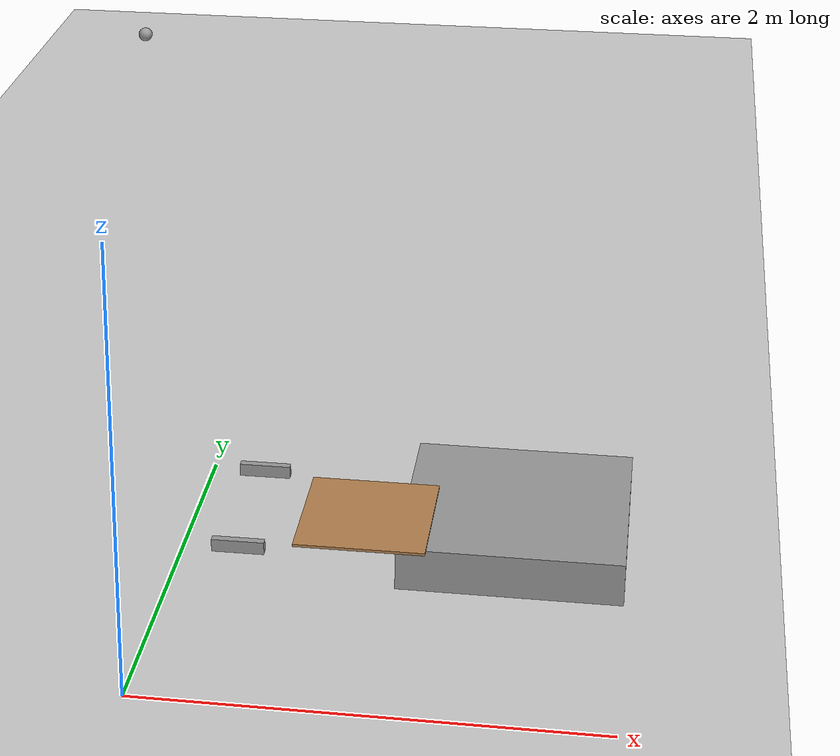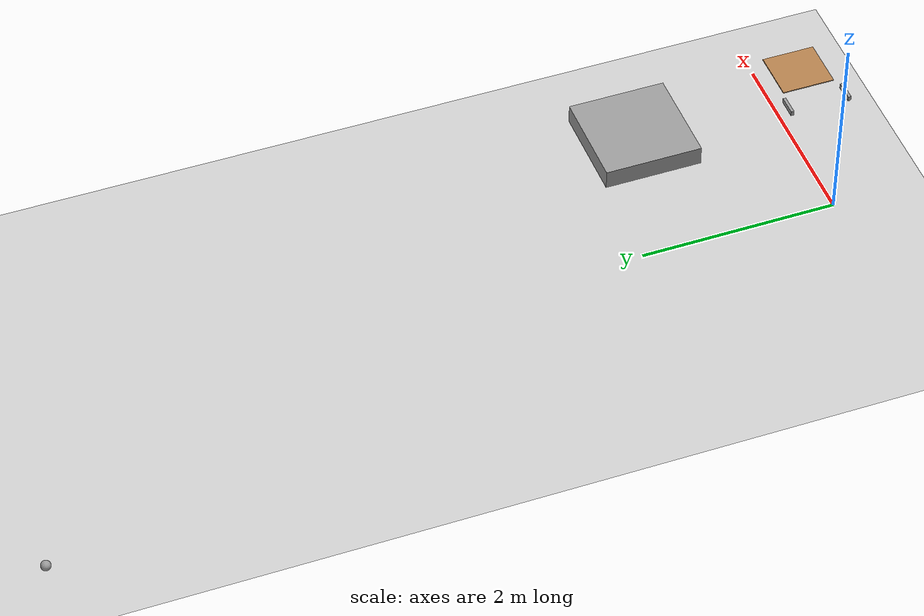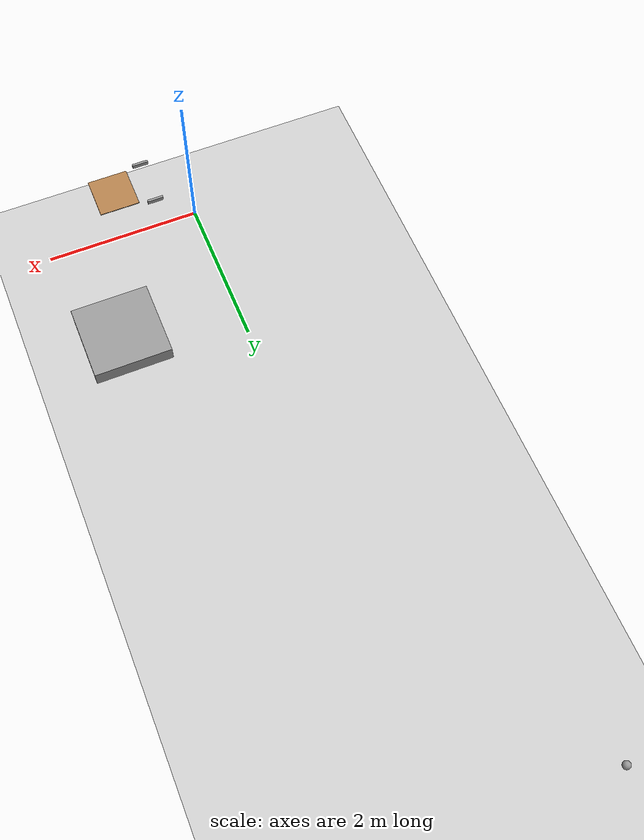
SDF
<sdf version="1.6">
 <world name="default">
  <model name="ground_plane">
   <static>1</static>
   <link name="link">
    <collision name="collision">
     <geometry><plane><normal>0 0 1</normal><size>100 100</size></plane></geometry>
     <surface>
      <contact><collide_bitmask>65535</collide_bitmask></contact>
      <friction><ode><mu>100</mu><mu2>50</mu2></ode></friction>
     </surface>
    </collision>
    <visual name="visual">
     <cast_shadows>0</cast_shadows>
     <geometry><plane><normal>0 0 1</normal><size>100 100</size></plane></geometry>
     <material>
      <script><uri>file://media/materials/scripts/gazebo.material</uri><name>Gazebo/Grey</name></script>
     </material>
    </visual>
   </link>
  </model>
  <light name="sun" type="directional">
   <pose>0 0 10 0 -0 0</pose>
   <diffuse>0.8 0.8 0.8 1</diffuse>
   <specular>0.2 0.2 0.2 1</specular>
   <attenuation>
    <range>1000</range>
    <constant>0.9</constant>
    <linear>0.01</linear>
    <quadratic>0.001</quadratic>
   </attenuation>
   <direction>-0.5 0.1 -0.9</direction>
  </light>
  <physics name="default_physics" default="0" type="ode">
   <real_time_update_rate>1000</real_time_update_rate>
   <max_step_size>0.001</max_step_size>
   <real_time_factor>1</real_time_factor>
  </physics>
  <gravity>0 0 -9.81</gravity>
  <magnetic_field>6e-06 2.3e-05 -4.2e-05</magnetic_field>
  <atmosphere type="adiabatic"/>
  <scene><ambient>0.4 0.4 0.4 1</ambient><background>0.7 0.7 0.7 1</background><shadows>1</shadows></scene>
  <spherical_coordinates>
   <surface_model>EARTH_WGS84</surface_model>
   <latitude_deg>0</latitude_deg>
   <longitude_deg>0</longitude_deg>
   <elevation>0</elevation>
   <heading_deg>0</heading_deg>
  </spherical_coordinates>
  <model name="wooden_board_handle_v2_revolute">
   <link name="base">
    <inertial>
     <mass>0.2765</mass>
     <inertia>
      <ixx>0.0025148</ixx>
      <ixy>0</ixy>
      <ixz>0</ixz>
      <iyy>0.00024037</iyy>
      <iyz>0</iyz>
      <izz>0.00275013</izz>
     </inertia>
    </inertial>
    <visual name="visual">
     <geometry><box><size>0.5016 0.5302 0.01046</size></box></geometry>
     <material>
      <script><uri>file://media/materials/scripts/gazebo.material</uri><name>Gazebo/Wood</name></script>
      <shader type="pixel"><normal_map>__default__</normal_map></shader>
      <ambient>1 1 1 1</ambient>
      <diffuse>1 1 1 1</diffuse>
      <specular>0.2 0.2 0.2 1</specular>
      <emissive>0 0 0 1</emissive>
     </material>
    </visual>
    <collision name="collision">
     <geometry><box><size>0.1016 0.3302 0.01046</size></box></geometry>
     <surface>
      <friction>
       <ode><mu>1</mu><mu2>1</mu2><fdir1>0 0 0</fdir1><slip1>0</slip1><slip2>0</slip2></ode>
       <torsional>
        <coefficient>1</coefficient>
        <patch_radius>0</patch_radius>
        <surface_radius>0.01</surface_radius>
        <use_patch_radius>0</use_patch_radius>
        <ode><slip>0</slip></ode>
       </torsional>
      </friction>
      <bounce><restitution_coefficient>0</restitution_coefficient><threshold>1e+06</threshold></bounce>
      <contact>
       <collide_without_contact>0</collide_without_contact>
       <collide_without_contact_bitmask>1</collide_without_contact_bitmask>
       <collide_bitmask>1</collide_bitmask>
       <ode>
        <soft_cfm>0</soft_cfm>
        <soft_erp>0.2</soft_erp>
        <kp>100000</kp>
        <kd>100</kd>
        <max_vel>100</max_vel>
        <min_depth>0.001</min_depth>
       </ode>
       <bullet>
        <split_impulse>1</split_impulse>
        <split_impulse_penetration_threshold>-0.01</split_impulse_penetration_threshold>
        <soft_cfm>0</soft_cfm>
        <soft_erp>0.2</soft_erp>
        <kp>100000</kp>
        <kd>100</kd>
       </bullet>
      </contact>
     </surface>
    </collision>
   </link>
   <link name="link_0">
    <pose>-0.45 0.3 0.00523 -3.14159 -0.001529 4.6e-05</pose>
    <inertial>
     <mass>0.001</mass>
     <inertia><ixx>0</ixx><ixy>0</ixy><ixz>0</ixz><iyy>0</iyy><iyz>0</iyz><izz>0</izz></inertia>
    </inertial>
    <visual name="visual">
     <geometry><box><size>0.2 0.03 0.05</size></box></geometry>
     <material>
      <lighting>1</lighting>
      <script><uri>file://media/materials/scripts/gazebo.material</uri><name>Gazebo/Grey</name></script>
      <shader type="pixel"><normal_map>__default__</normal_map></shader>
      <ambient>0.3 0.3 0.3 1</ambient>
      <diffuse>0.7 0.7 0.7 1</diffuse>
      <specular>0.01 0.01 0.01 1</specular>
      <emissive>0 0 0 1</emissive>
     </material>
    </visual>
    <collision name="collision">
     <geometry><box><size>0.2 0.03 0.05</size></box></geometry>
     <surface>
      <friction>
       <ode><mu>1</mu><mu2>1</mu2><fdir1>0 0 0</fdir1><slip1>0</slip1><slip2>0</slip2></ode>
       <torsional>
        <coefficient>1</coefficient>
        <patch_radius>0</patch_radius>
        <surface_radius>0</surface_radius>
        <use_patch_radius>1</use_patch_radius>
        <ode><slip>0</slip></ode>
       </torsional>
      </friction>
      <bounce><restitution_coefficient>0</restitution_coefficient><threshold>1e+06</threshold></bounce>
      <contact>
       <collide_without_contact>0</collide_without_contact>
       <collide_without_contact_bitmask>1</collide_without_contact_bitmask>
       <collide_bitmask>1</collide_bitmask>
       <ode>
        <soft_cfm>0</soft_cfm>
        <soft_erp>0.2</soft_erp>
        <kp>1e+13</kp>
        <kd>1</kd>
        <max_vel>0.01</max_vel>
        <min_depth>0</min_depth>
       </ode>
       <bullet>
        <split_impulse>1</split_impulse>
        <split_impulse_penetration_threshold>-0.01</split_impulse_penetration_threshold>
        <soft_cfm>0</soft_cfm>
        <soft_erp>0.2</soft_erp>
        <kp>1e+13</kp>
        <kd>1</kd>
       </bullet>
      </contact>
     </surface>
    </collision>
   </link>
   <link name="link_1">
    <pose>-0.45 -0.3 0.00523 -3.14159 -0.001529 4.6e-05</pose>
    <inertial>
     <mass>0.001</mass>
     <inertia><ixx>0</ixx><ixy>0</ixy><ixz>0</ixz><iyy>0</iyy><iyz>0</iyz><izz>0</izz></inertia>
    </inertial>
    <visual name="visual">
     <geometry><box><size>0.2 0.03 0.05</size></box></geometry>
     <material>
      <lighting>1</lighting>
      <script><uri>file://media/materials/scripts/gazebo.material</uri><name>Gazebo/Grey</name></script>
      <shader type="pixel"><normal_map>__default__</normal_map></shader>
      <ambient>0.3 0.3 0.3 1</ambient>
      <diffuse>0.7 0.7 0.7 1</diffuse>
      <specular>0.01 0.01 0.01 1</specular>
      <emissive>0 0 0 1</emissive>
     </material>
    </visual>
    <collision name="collision">
     <geometry><box><size>0.2 0.03 0.05</size></box></geometry>
     <surface>
      <friction>
       <ode><mu>1</mu><mu2>1</mu2><fdir1>0 0 0</fdir1><slip1>0</slip1><slip2>0</slip2></ode>
       <torsional>
        <coefficient>1</coefficient>
        <patch_radius>0</patch_radius>
        <surface_radius>0</surface_radius>
        <use_patch_radius>1</use_patch_radius>
        <ode><slip>0</slip></ode>
       </torsional>
      </friction>
      <bounce><restitution_coefficient>0</restitution_coefficient><threshold>1e+06</threshold></bounce>
      <contact>
       <collide_without_contact>0</collide_without_contact>
       <collide_without_contact_bitmask>1</collide_without_contact_bitmask>
       <collide_bitmask>1</collide_bitmask>
       <ode>
        <soft_cfm>0</soft_cfm>
        <soft_erp>0.2</soft_erp>
        <kp>1e+13</kp>
        <kd>1</kd>
        <max_vel>0.01</max_vel>
        <min_depth>0</min_depth>
       </ode>
       <bullet>
        <split_impulse>1</split_impulse>
        <split_impulse_penetration_threshold>-0.01</split_impulse_penetration_threshold>
        <soft_cfm>0</soft_cfm>
        <soft_erp>0.2</soft_erp>
        <kp>1e+13</kp>
        <kd>1</kd>
       </bullet>
      </contact>
     </surface>
    </collision>
   </link>
   <joint name="base_JOINT_0" type="revolute">
    <parent>base</parent>
    <child>link_0</child>
    <axis>
     <xyz>1 0 0</xyz>
     <use_parent_model_frame>0</use_parent_model_frame>
     <limit><lower>0</lower><upper>0</upper><effort>0</effort><velocity>0</velocity></limit>
     <dynamics>
      <spring_reference>0</spring_reference>
      <spring_stiffness>0</spring_stiffness>
      <damping>0</damping>
      <friction>0</friction>
     </dynamics>
    </axis>
    <physics>
     <ode><limit><cfm>0</cfm><erp>0</erp></limit><suspension><cfm>0</cfm><erp>0</erp></suspension></ode>
    </physics>
   </joint>
   <joint name="base_JOINT_1" type="revolute">
    <parent>base</parent>
    <child>link_1</child>
    <axis>
     <xyz>1 0 0</xyz>
     <use_parent_model_frame>0</use_parent_model_frame>
     <limit><lower>-0</lower><upper>0</upper><effort>0</effort><velocity>0</velocity></limit>
     <dynamics>
      <spring_reference>0</spring_reference>
      <spring_stiffness>0</spring_stiffness>
      <damping>0</damping>
      <friction>0</friction>
     </dynamics>
    </axis>
    <physics>
     <ode><limit><cfm>0</cfm><erp>0</erp></limit><suspension><cfm>0</cfm><erp>0</erp></suspension></ode>
    </physics>
   </joint>
   <static>0</static>
   <pose>1.00005 5e-06 0.921254 7.3e-05 -0.001493 1.3e-05</pose>
  </model>
  <model name="bouncy_platform">
   <link name="link">
    <inertial>
     <mass>100</mass>
     <inertia><ixx>20.3</ixx><ixy>0</ixy><ixz>0</ixz><iyy>20.3</iyy><iyz>0</iyz><izz>16.6</izz></inertia>
    </inertial>
    <visual name="visual">
     <geometry><box><size>1 1 0.2</size></box></geometry>
     <material>
      <script><name>Gazebo/Grey</name><uri>file://media/materials/scripts/gazebo.material</uri></script>
      <shader type="pixel"><normal_map>__default__</normal_map></shader>
      <ambient>0.3 0.3 0.3 1</ambient>
      <diffuse>0.7 0.7 0.7 1</diffuse>
      <specular>0.01 0.01 0.01 1</specular>
      <emissive>0 0 0 1</emissive>
     </material>
    </visual>
    <collision name="collision">
     <geometry><box><size>1 1 0.2</size></box></geometry>
     <surface>
      <friction>
       <ode><mu>1</mu><mu2>1</mu2><fdir1>0 0 0</fdir1><slip1>0</slip1><slip2>0</slip2></ode>
       <torsional>
        <coefficient>1</coefficient>
        <patch_radius>0</patch_radius>
        <surface_radius>0</surface_radius>
        <use_patch_radius>1</use_patch_radius>
        <ode><slip>0</slip></ode>
       </torsional>
      </friction>
      <bounce><restitution_coefficient>0.8</restitution_coefficient><threshold>0.01</threshold></bounce>
      <contact>
       <collide_without_contact>0</collide_without_contact>
       <collide_without_contact_bitmask>1</collide_without_contact_bitmask>
       <collide_bitmask>1</collide_bitmask>
       <ode>
        <soft_cfm>0</soft_cfm>
        <soft_erp>0.2</soft_erp>
        <kp>1e+13</kp>
        <kd>1</kd>
        <max_vel>10</max_vel>
        <min_depth>0</min_depth>
       </ode>
       <bullet>
        <split_impulse>1</split_impulse>
        <split_impulse_penetration_threshold>-0.01</split_impulse_penetration_threshold>
        <soft_cfm>0</soft_cfm>
        <soft_erp>0.2</soft_erp>
        <kp>1e+13</kp>
        <kd>1</kd>
       </bullet>
      </contact>
     </surface>
    </collision>
   </link>
   <static>0</static>
   <pose>1.49278 1.48537 0.1 0 -0 1.8e-05</pose>
  </model>
  <model name="test_ball_v1">
   <link name="link">
    <inertial>
     <mass>0.5</mass>
     <inertia><ixx>0.0005</ixx><ixy>0</ixy><ixz>0</ixz><iyy>0.0005</iyy><iyz>0</iyz><izz>0.0005</izz></inertia>
    </inertial>
    <visual name="visual">
     <geometry><sphere><radius>0.05</radius></sphere></geometry>
     <material>
      <script><name>Gazebo/Grey</name><uri>file://media/materials/scripts/gazebo.material</uri></script>
      <shader type="pixel"><normal_map>__default__</normal_map></shader>
      <ambient>0.3 0.3 0.3 1</ambient>
      <diffuse>0.7 0.7 0.7 1</diffuse>
      <specular>0.01 0.01 0.01 1</specular>
      <emissive>0 0 0 1</emissive>
     </material>
    </visual>
    <collision name="collision">
     <geometry><sphere><radius>0.05</radius></sphere></geometry>
     <surface>
      <friction>
       <ode><mu>1</mu><mu2>1</mu2><fdir1>0 0 0</fdir1><slip1>0</slip1><slip2>0</slip2></ode>
       <torsional>
        <coefficient>1</coefficient>
        <patch_radius>0</patch_radius>
        <surface_radius>0</surface_radius>
        <use_patch_radius>1</use_patch_radius>
        <ode><slip>0</slip></ode>
       </torsional>
      </friction>
      <bounce><restitution_coefficient>0.75</restitution_coefficient><threshold>0.1</threshold></bounce>
      <contact>
       <collide_without_contact>0</collide_without_contact>
       <collide_without_contact_bitmask>1</collide_without_contact_bitmask>
       <collide_bitmask>1</collide_bitmask>
       <ode>
        <soft_cfm>0</soft_cfm>
        <soft_erp>0.2</soft_erp>
        <kp>1e+13</kp>
        <kd>1</kd>
        <max_vel>10</max_vel>
        <min_depth>0</min_depth>
       </ode>
       <bullet>
        <split_impulse>1</split_impulse>
        <split_impulse_penetration_threshold>-0.01</split_impulse_penetration_threshold>
        <soft_cfm>0</soft_cfm>
        <soft_erp>0.2</soft_erp>
        <kp>1e+13</kp>
        <kd>1</kd>
       </bullet>
      </contact>
     </surface>
    </collision>
   </link>
   <static>0</static>
   <pose>-1.7882 8.45441 0.05 -1.56384 -0.700953 2.1665</pose>
  </model>
 </world>
</sdf>
